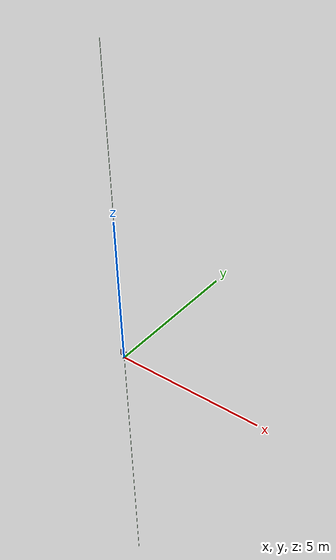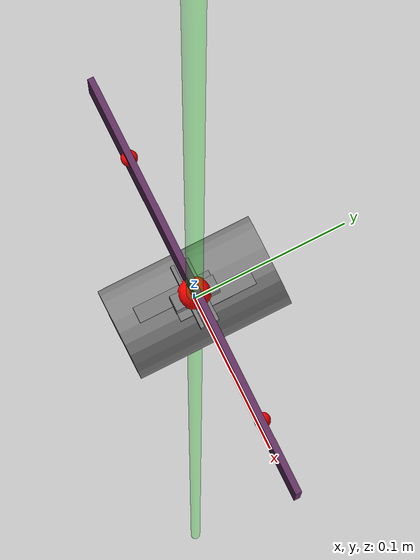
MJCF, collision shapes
<mujoco model="base">
    <asset>
        <mesh name="electric_gripper_base" file="meshes/two_finger_gripper/electric_gripper_base.STL" />
        <mesh name="standard_narrow" file="meshes/two_finger_gripper/standard_narrow.STL" />
        <mesh name="paddle_tip" file="meshes/two_finger_gripper/paddle_tip.STL" />
    </asset>

    <worldbody>

        <inertial pos="1e-08 1e-08 1e-08" quat="0.820473 0.339851 -0.17592 0.424708" mass="1e-08" diaginertia="1e-08 1e-08 1e-08" />
        <geom size="1e-08 5e-09" type="cylinder" />
        <body name="right_gripper_base" pos="0 0 0.025">
            <inertial pos="0 0 0" quat="-0.5 0.5 0.5 0.5" mass="0.3" diaginertia="3e-08 2e-08 2e-08" />
            <geom quat="0 0 0.707107 0.707107" type="mesh" contype="0" conaffinity="0" group="1" mesh="electric_gripper_base" />
            <geom size="0.029 0.05" quat="0 0 0.707107 0.707107" type="cylinder" />
            <body name="right_gripper" pos="0 0 0.095">
                <inertial pos="0 0 0" mass="0.0001" diaginertia="0 0 0" />
                <!-- This site was added for visualization. -->
                <site name="grip_site" pos="0 0 0" size="0.01 0.01 0.01" rgba="1 0 0 1" type="sphere" group="1"/>
                <site name="grip_site_cylinder" pos="0 0 0" size="0.005 10" rgba="0 1 0 0.3" type="cylinder" group="1"/>

                <!-- This camera points out of the gripper. -->
                <camera mode="fixed" name="eye_in_hand" pos="0 0 0" quat="0 -1 1 0" fovy="75"/>
            </body>

            <body name ='slide_panel'  pos= "0 0 0.15"  quat="0 0 1 1">
                <site name="goal" pos="0.085  0.05 0" size="0.005 0.005 0.005" rgba="1 0 0 1" type="sphere" group="1"/>
                <site name="start" pos="-0.085 -0.05 0.002" size="0.005 0.005 0.005" rgba="1 0 0 1" type="sphere" group="1"/>

                <site name="slide_panel_centre" pos="0 0 0" size="0.003 0.003 0.003" rgba="1 0 0 1" type="sphere" group="1"/>
                <geom size="0.035 0.035 0.0001" pos="0.085  0.05 0.002" type="box"  group="1"  rgba="0 1 0 1" name="goal_region" contype="0" conaffinity="0"  friction="0 0 0"/>
                <geom size="0.035 0.035 0.0001" pos="-0.085 -0.05 0.002" type="box"  group="1"  rgba="1 1 0 1" name="start_region" contype="0" conaffinity="0"  friction="0 0 0"/>

                <geom size="0.135 0.105 0.002" pos="0 0 0" density = "500" type="box"  group="1"  rgba="0.4 0.2 0.4 1" name="slide_panel_g"  friction="0.1 0.001 0.0001"/>

            </body>

            <body name="r_gripper_l_finger" pos="0 -0.008 0.02">
                <inertial pos="0 0 0" quat="0 0 0 -1" mass="0.02" diaginertia="0.01 0.01 0.01" />
                <geom name="r_gripper_l_finger" quat="0 0 0 -1" type="mesh" contype="0" conaffinity="0" group="1" mesh="standard_narrow" />
                <geom size="0.005 0.005 0.0375" pos="0 0.01725 0.04" quat="0 0 0 -1" type="box" conaffinity="1" contype="0" name="l_finger_g0" friction="0 0 0"/>
                <geom size="0.005 0.025 0.0085" pos="-0.005 -0.003 0.0083" quat="0 0 0 -1" type="box" conaffinity="1" contype="0" name="l_finger_g1" friction="0 0 0"/>

                <body name="r_gripper_l_finger_tip" pos="0 0.01725 0.0735">
                    <inertial pos="0 0 0" quat="0 0 0 1" mass="0.01" diaginertia="0.01 0.01 0.01" />
                    <geom quat="0 0 0 1" type="mesh" contype="0" conaffinity="0" group="1" mesh="paddle_tip" />
                    <geom size="0.0203 0.0012 0.0185" pos="0 -0.0045 -0.015" quat="0 0 0 1" type="box"  conaffinity="1" contype="0" name="l_fingertip_g0" friction="0 0 0"/>
                </body>
            </body>
            <body name="r_gripper_r_finger" pos="0 0.008 0.02">
                <inertial pos="0 0 0" mass="0.02" diaginertia="0.01 0.01 0.01" />
                <geom name="r_gripper_r_finger" type="mesh" contype="0" conaffinity="0" group="1" mesh="standard_narrow" />
                <geom size="0.005 0.005  0.0375" pos="0 -0.01725 0.04" type="box" conaffinity="1" contype="0" name="r_finger_g0" friction="0 0 0"/>
                <geom size="0.005 0.025 0.0085" pos="0.005 0.003 0.0083" type="box" conaffinity="1" contype="0" name="r_finger_g1" friction="0 0 0"/>
                <body name="r_gripper_r_finger_tip" pos="0 -0.01725 0.0735">
                    <inertial pos="0 0 0" mass="0.01" diaginertia="0.01 0.01 0.01" />
                    <geom type="mesh" contype="0" conaffinity="0" group="1" mesh="paddle_tip" />
                    <geom size="0.0203 0.0012 0.0185" pos="0 0.0045 -0.015" type="box"  conaffinity="1" contype="0" name="r_fingertip_g0" friction="0 0 0"/>
                </body>
            </body>
        </body>
    </worldbody>
</mujoco>
